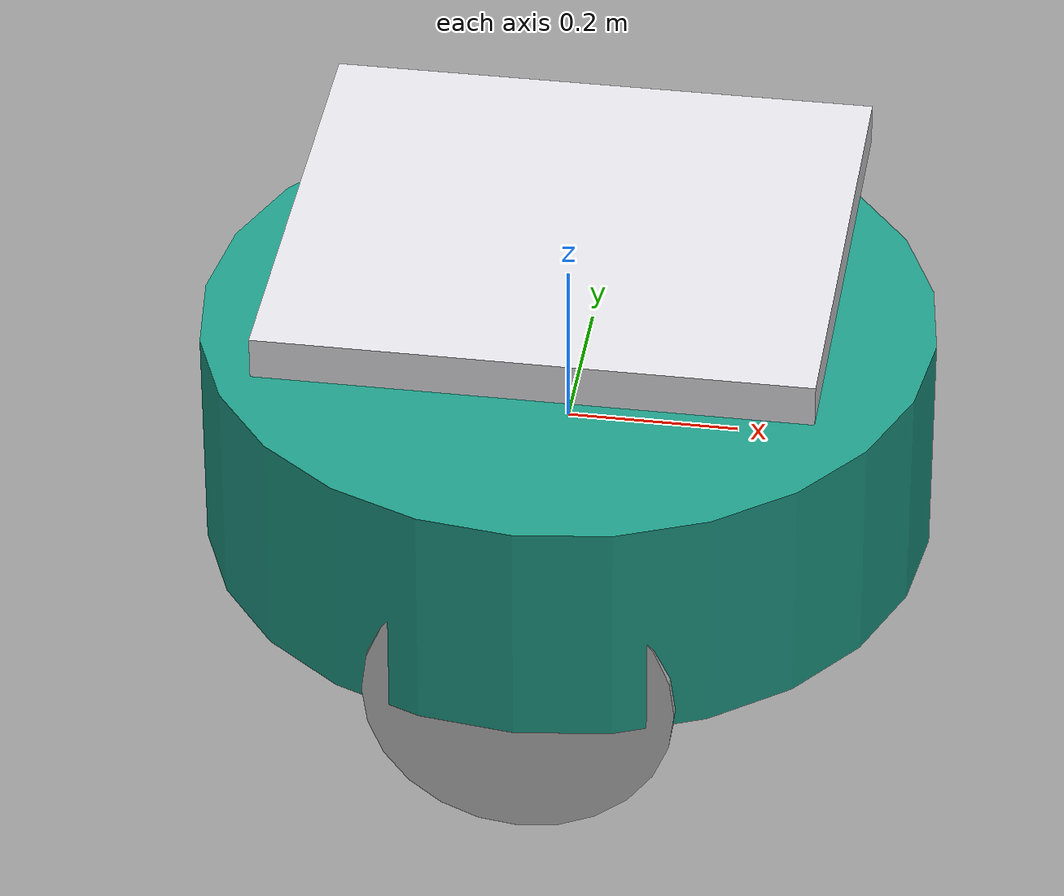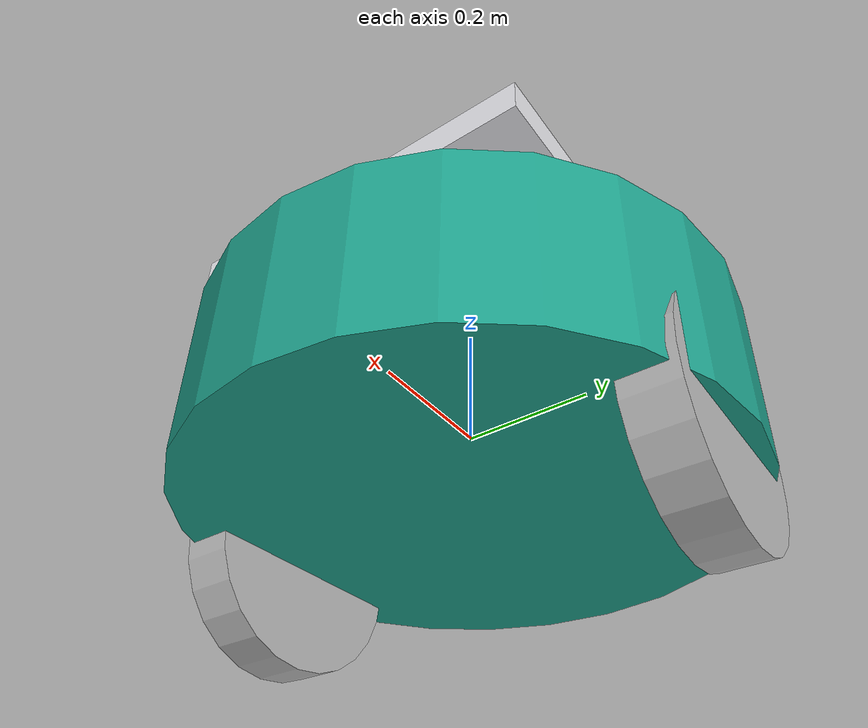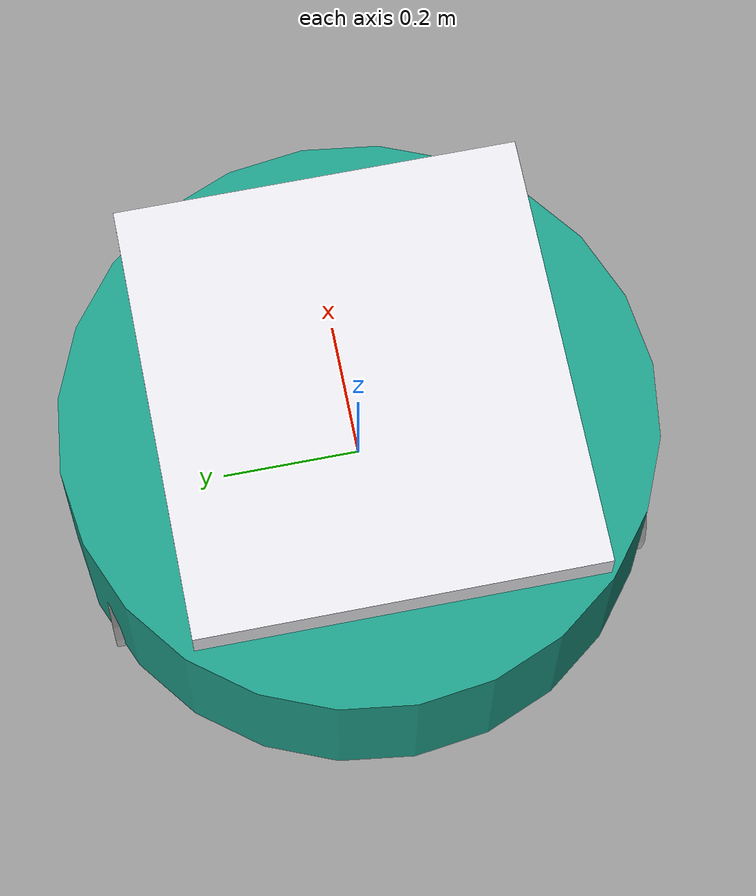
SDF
<?xml version="1.0"?>
<sdf version="1.10">
  <model name="ump_mobile_base">
    <link name="base_link">
      <inertial><mass>18</mass><inertia><ixx>0.55</ixx><iyy>0.8</iyy><izz>1.0</izz></inertia></inertial>
      <collision name="body_collision"><geometry><cylinder><radius>0.43</radius><length>0.28</length></cylinder></geometry></collision>
      <visual name="body_visual"><geometry><cylinder><radius>0.43</radius><length>0.28</length></cylinder></geometry><material><diffuse>0.12 0.62 0.54 1</diffuse></material></visual>
      <collision name="tray_collision"><pose>0 0 0.25 0 0 0</pose><geometry><box><size>0.64 0.58 0.05</size></box></geometry></collision>
      <visual name="tray_visual"><pose>0 0 0.25 0 0 0</pose><geometry><box><size>0.64 0.58 0.05</size></box></geometry><material><diffuse>0.9 0.9 0.92 1</diffuse></material></visual>
      <collision name="caster"><pose>-0.31 0 -0.24 0 0 0</pose><geometry><sphere><radius>0.07</radius></sphere></geometry><surface><friction><ode><mu>0.04</mu><mu2>0.04</mu2></ode></friction></surface></collision>
    </link>
    <link name="left_wheel">
      <pose relative_to="base_link">0 0.36 -0.12 1.5708 0 0</pose>
      <inertial><mass>1.4</mass><inertia><ixx>0.02</ixx><iyy>0.02</iyy><izz>0.02</izz></inertia></inertial>
      <collision name="collision"><geometry><cylinder><radius>0.18</radius><length>0.08</length></cylinder></geometry></collision>
      <visual name="visual"><geometry><cylinder><radius>0.18</radius><length>0.08</length></cylinder></geometry></visual>
    </link>
    <link name="right_wheel">
      <pose relative_to="base_link">0 -0.36 -0.12 1.5708 0 0</pose>
      <inertial><mass>1.4</mass><inertia><ixx>0.02</ixx><iyy>0.02</iyy><izz>0.02</izz></inertia></inertial>
      <collision name="collision"><geometry><cylinder><radius>0.18</radius><length>0.08</length></cylinder></geometry></collision>
      <visual name="visual"><geometry><cylinder><radius>0.18</radius><length>0.08</length></cylinder></geometry></visual>
    </link>
    <joint name="left_wheel_joint" type="revolute"><parent>base_link</parent><child>left_wheel</child><axis><xyz>0 1 0</xyz></axis></joint>
    <joint name="right_wheel_joint" type="revolute"><parent>base_link</parent><child>right_wheel</child><axis><xyz>0 1 0</xyz></axis></joint>
    <plugin filename="gz-sim-diff-drive-system" name="gz::sim::systems::DiffDrive">
      <left_joint>left_wheel_joint</left_joint><right_joint>right_wheel_joint</right_joint>
      <wheel_separation>0.72</wheel_separation><wheel_radius>0.18</wheel_radius>
      <topic>/model/mobile_base/cmd_vel</topic><odom_topic>/model/mobile_base/odometry</odom_topic>
    </plugin>
  </model>
</sdf>
